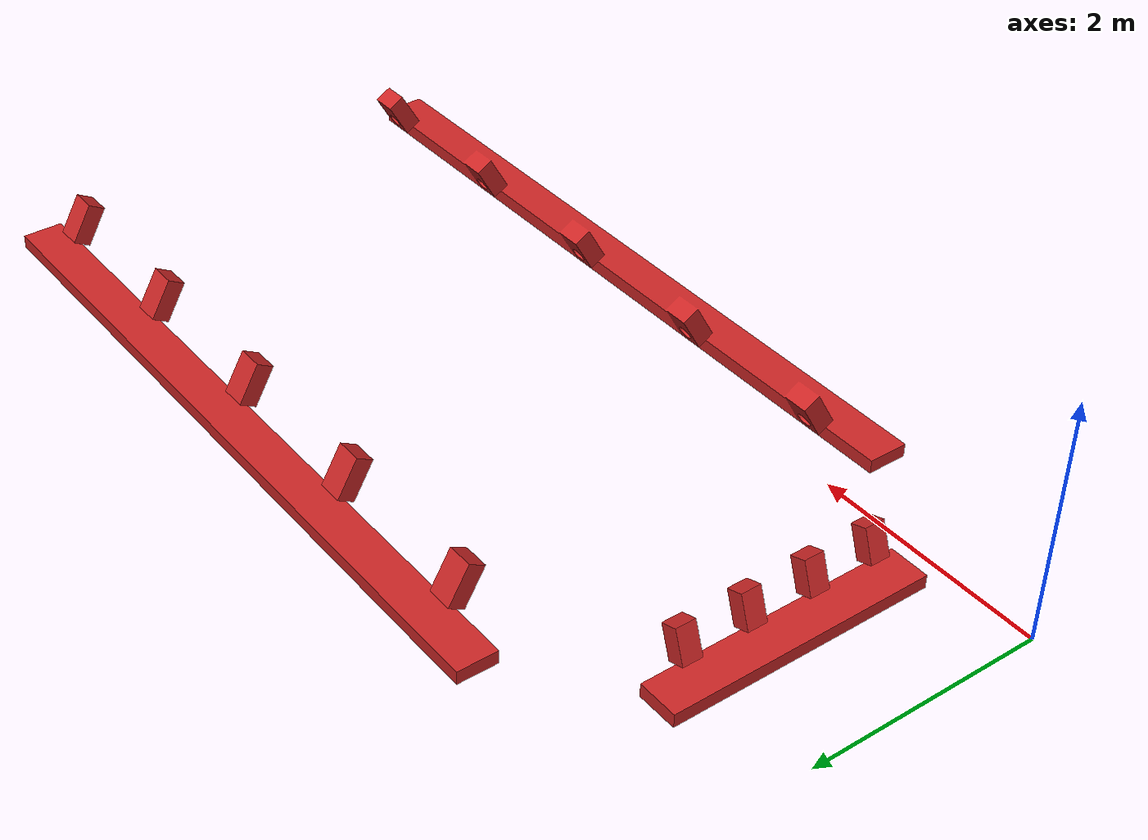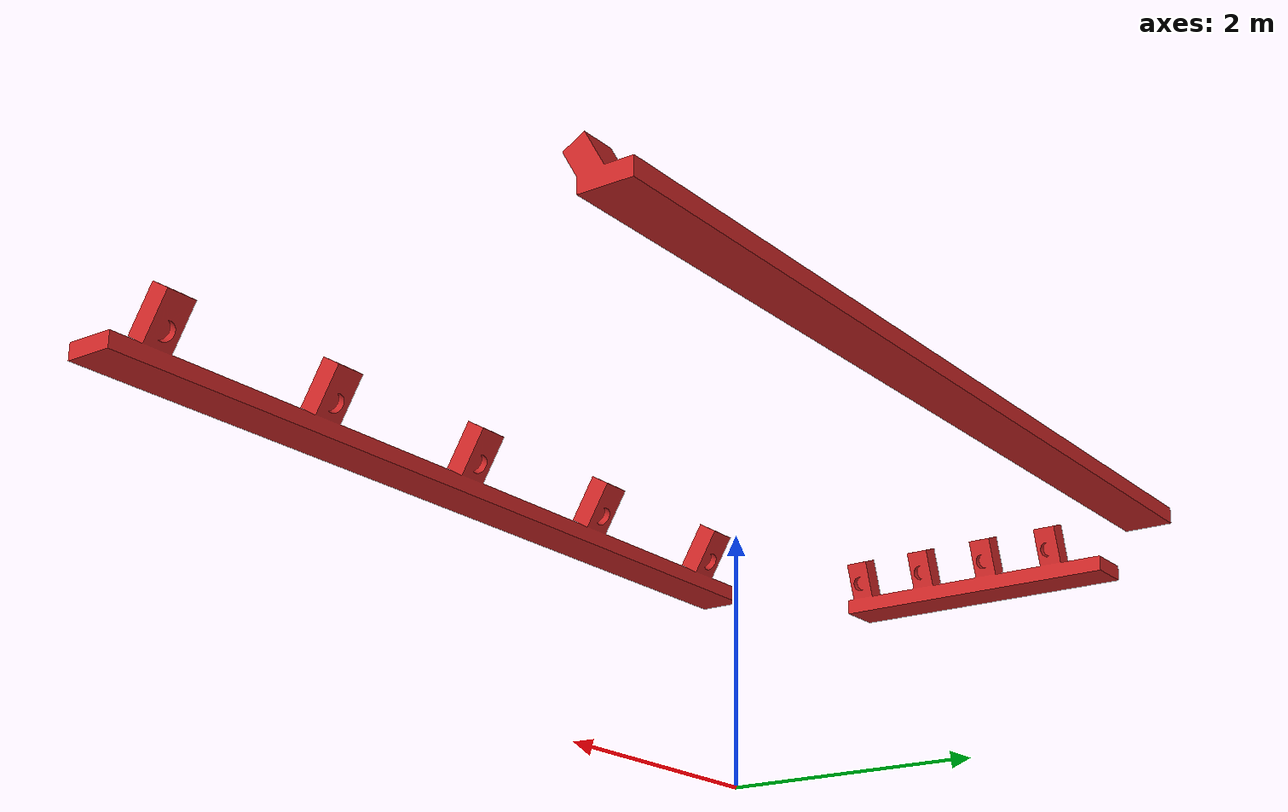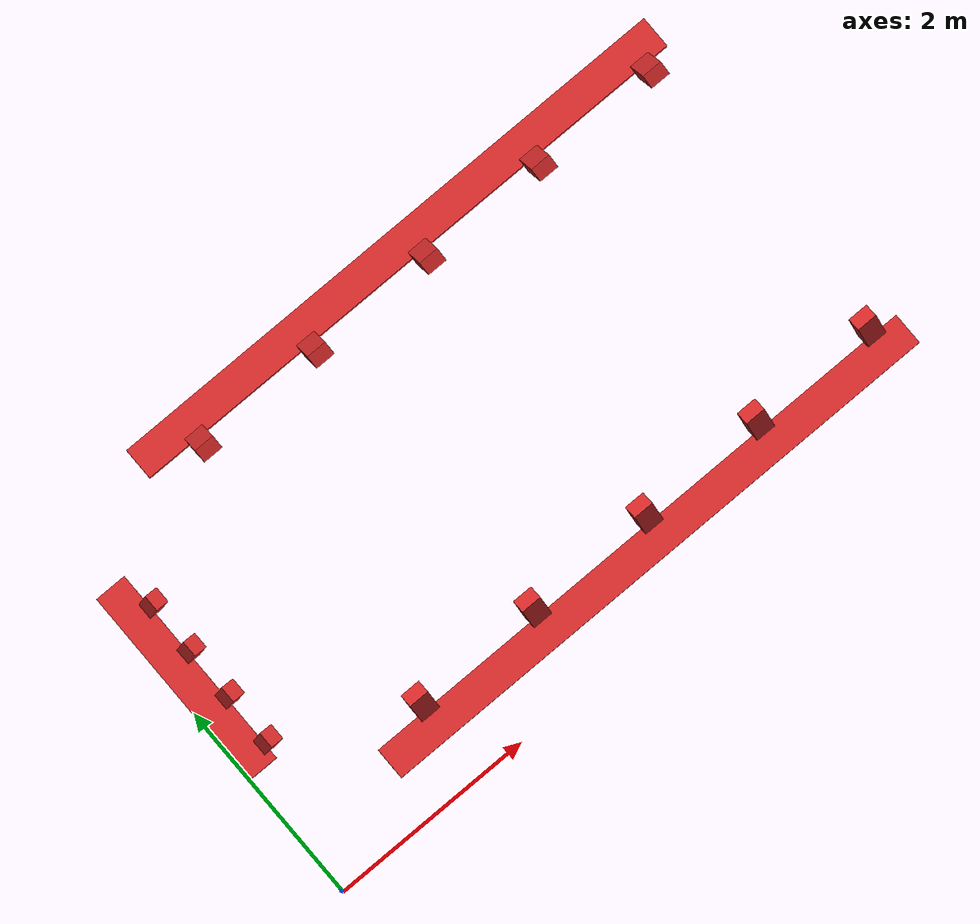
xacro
<?xml version="1.0"?>
<robot name="superchick" xmlns:xacro="http://www.ros.org/wiki/xacro">

  <!-- vicon Frame-->
  <link name="vicon_frame">
    <visual>
      <origin xyz="0 0 0" rpy="${M_PI/2} 0 ${M_PI/2}" />
      <geometry>
        <mesh filename="package://superchick/meshes/vicon3.dae" scale = ".001 .001 .001" />
      </geometry>
      <material name="vicon_red"/>
    </visual>

    <collision>
      <origin xyz="0 0 0" rpy="${M_PI/2} 0 ${M_PI/2}" />
      <geometry>
        <mesh filename="package://superchick/meshes/vicon3.dae" scale = ".001 .001 .001" />
      </geometry>
      <material name="vicon_red"/>
    </collision>

    <inertial>
      <mass value="${mass}"/>
      <inertia ixx="${mass/12}" ixy="0.0" ixz="0.0"
       iyy="${inertia_mom}" iyz="0.0000"
       izz="${inertia_mom}"/>
    </inertial>
  </link>

</robot>
